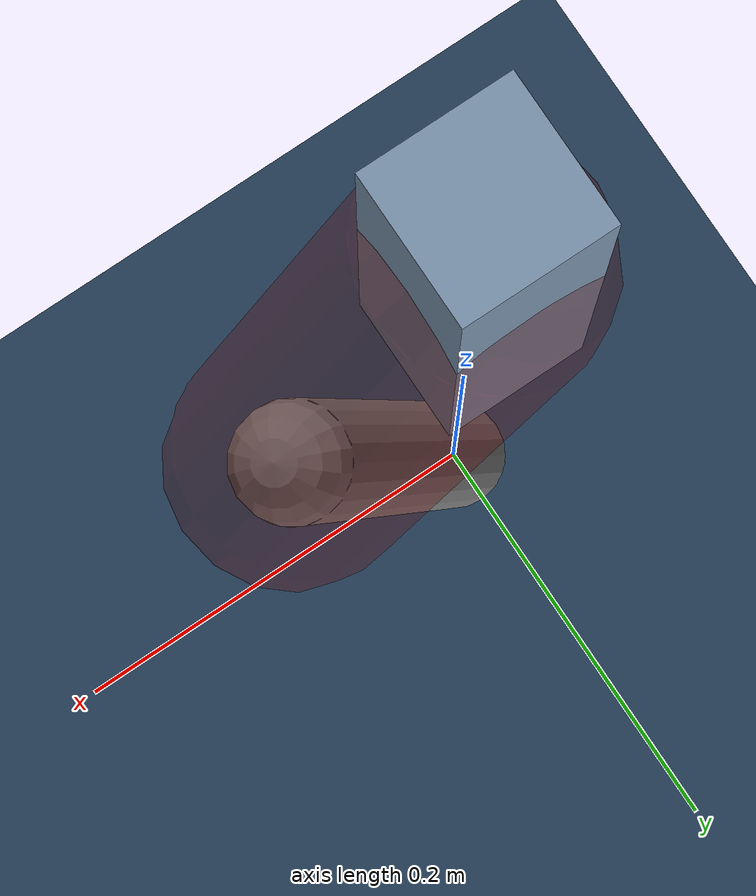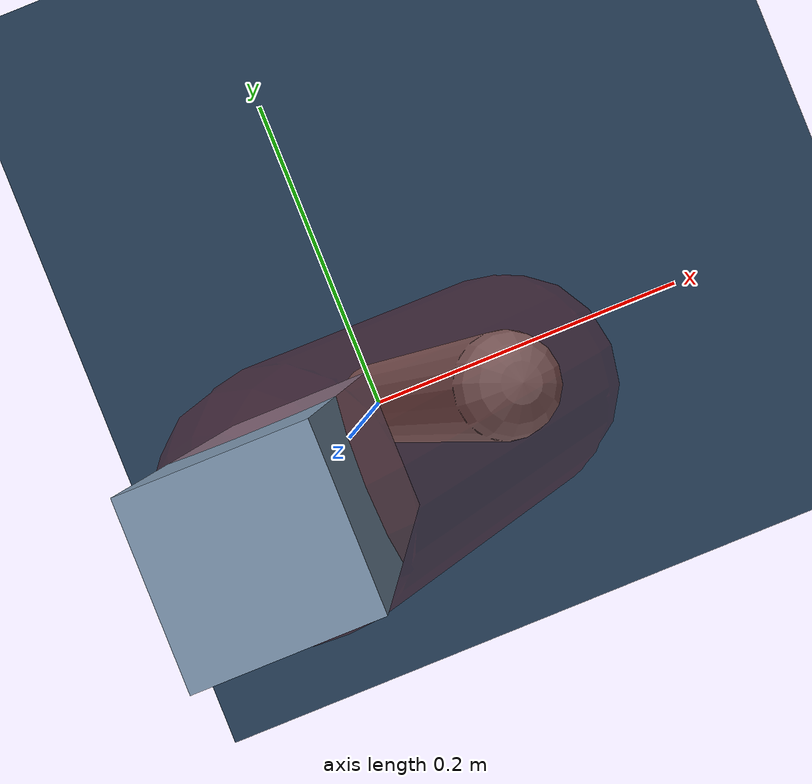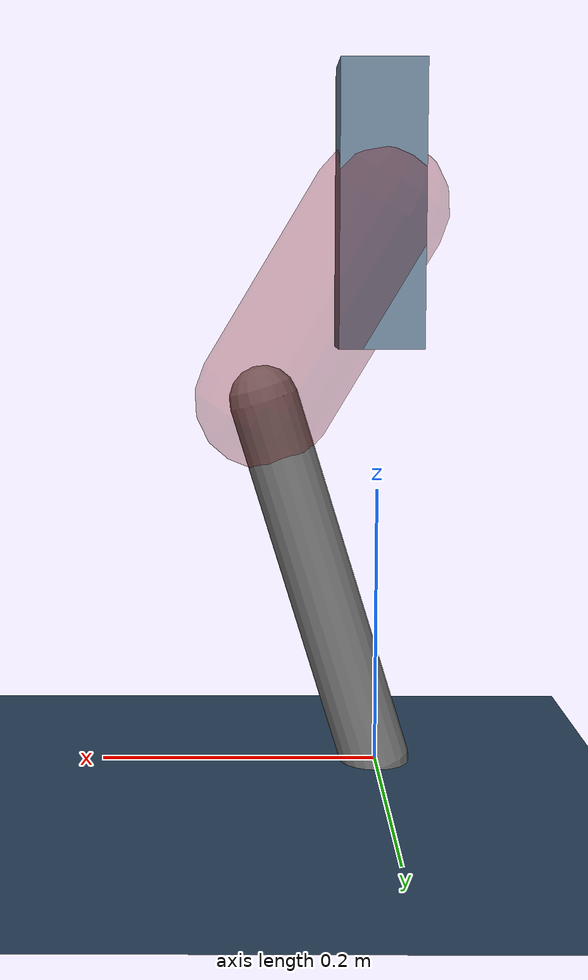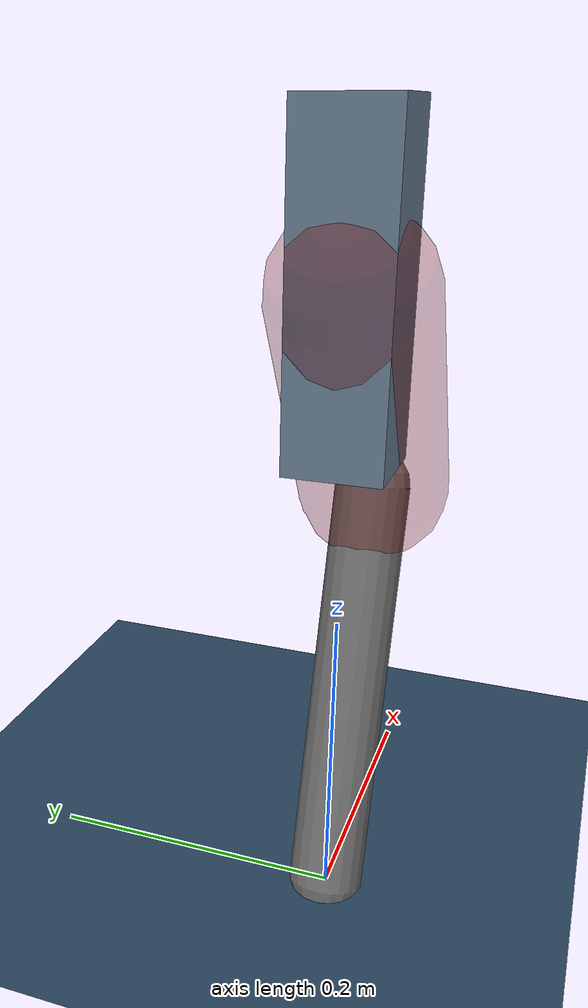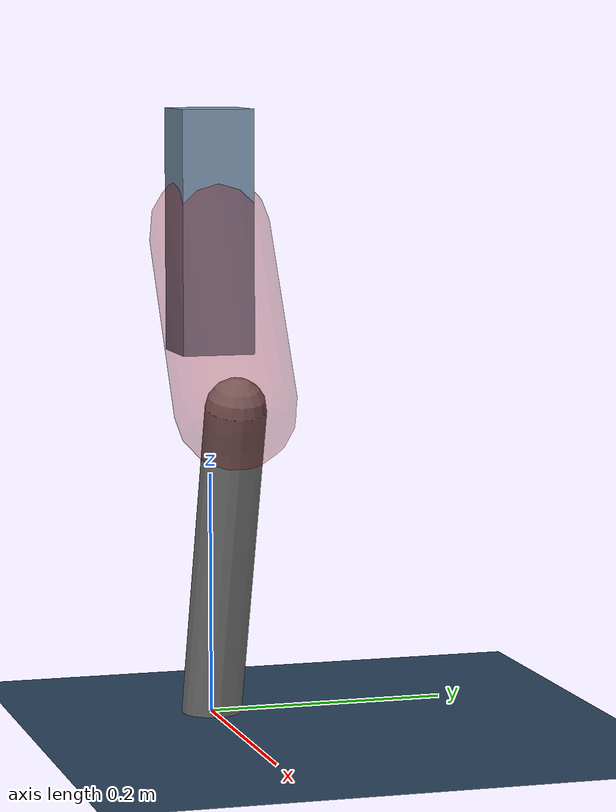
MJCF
<mujoco model="Hopper2D">
	<compiler inertiafromgeom="true" angle="radian" />
	<option timestep="0.001" integrator="implicit" cone="elliptic" solver="Newton" tolerance="1e-10" />

	<default>
		<geom contype="1" conaffinity="1" condim="3" friction="2 0.005 0.0001" solref="0.005 1" />
		<joint limited="true" damping="0.1" />
	</default>

	<asset>
		<texture name="skybox" type="skybox" builtin="gradient" rgb1=".4 .6 .8" rgb2="0 0 0" width="800" height="800" />
		<texture name="grid" type="2d" builtin="checker" rgb1=".1 .2 .3" rgb2=".2 .3 .4" width="300" height="300" mark="edge" markrgb=".2 .3 .4" />
		<material name="ground" texture="grid" texrepeat="1 1" texuniform="true" reflectance="0.1" />
		<material name="leg" rgba="0.5 0.6 0.7 1" />
	</asset>

	<worldbody>

		<geom name="floor" type="plane" size="5 5 0.25" material="ground" />

		<light directional="false" diffuse="0.8 0.8 0.8" specular="0.3 0.3 0.3" pos="0 0 2" dir="0 0 -1" />
		<light mode="targetbodycom" target="base" directional="false" diffuse="0.8 0.8 0.8" specular="0.3 0.3 0.3" pos="0 0 2" dir="0 0 -1" />

		<camera name="fixed" pos="0 -2 1" xyaxes="1 0 0 0 0 1" />
		<camera name="tracking" mode="trackcom" pos="0 -3 1" />

		<body name="root" pos="0 0 0.40238503716893465">
			<joint name="slide_x" type="slide" axis="1 0 0" range="-100 100" />
			<joint name="slide_z" type="slide" axis="0 0 1" range="0 10" />

			<body name="base" pos="0 0 0">
				<geom name="torso" type="box" size="0.03 0.03 0.1" mass="3.733" material="leg" />

				<body name="link1" pos="0 0 0" euler="0 1.0320597199777315 0">
					<joint type="hinge" axis="0 -1 0" pos="0 0 0" name="hinge1" limited="true" range="-3.14 3.14" stiffness="0" damping="0.1" />
					<geom name="thigh" type="capsule" fromto="0 0 0 0.15997831278528488 0 0" size="0.05" rgba="0.5 0 0 0.3" mass="0.6322479506846836" />

					<body name="link2" pos="0.15997831278528488 0 0" euler="0 0.8390207357835772 0">
						<joint type="hinge" axis="0 -1 0" pos="0 0 0" name="hinge2" limited="true" range="-3.14 3.14" stiffness="0" damping="0.1" />
						<geom name="shank" type="capsule" fromto="0 0 0 0.27748312449616364 0 0" size="0.025" mass="0.4650864995969309" />

					</body>
				</body>
			</body>
		</body>
	</worldbody>

	<actuator>
		<motor name="torque1" joint="hinge1" ctrlrange="-174.45891981130472 174.45891981130472" ctrllimited="true" gear="1" />
		<motor name="torque2" joint="hinge2" ctrlrange="-122.58107725516281 122.58107725516281" ctrllimited="true" gear="1" />
	</actuator>
</mujoco>
